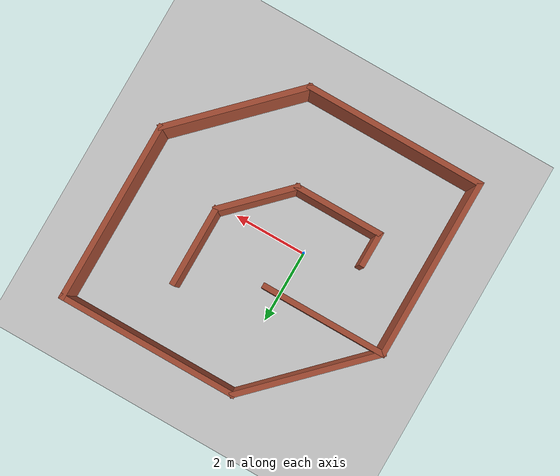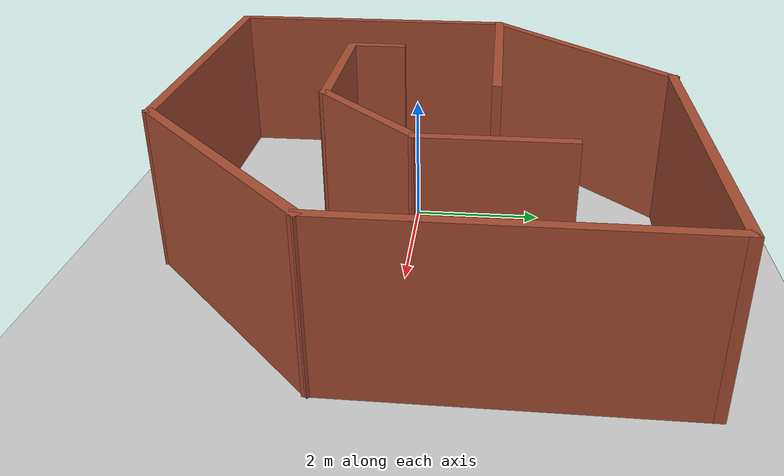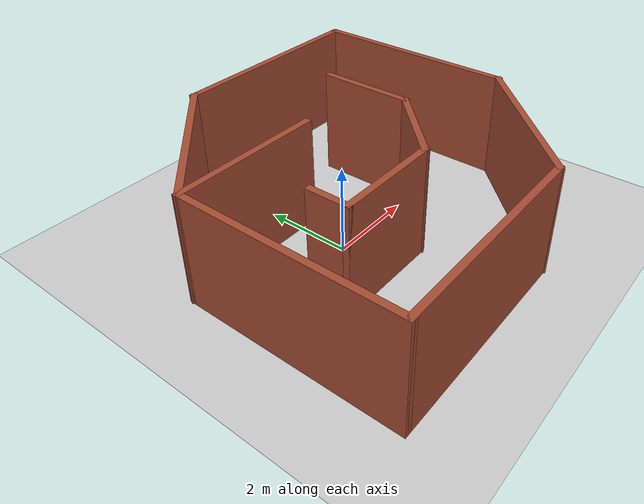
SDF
<sdf version="1.7">
 <world name="default">
  <light name="sun" type="directional">
   <pose>0 0 10 0 -0 0</pose>
   <diffuse>0.8 0.8 0.8 1</diffuse>
   <specular>0.2 0.2 0.2 1</specular>
   <attenuation>
    <range>1000</range>
    <constant>0.9</constant>
    <linear>0.01</linear>
    <quadratic>0.001</quadratic>
   </attenuation>
   <direction>-0.5 0.1 -0.9</direction>
   <spot><inner_angle>0</inner_angle><outer_angle>0</outer_angle><falloff>0</falloff></spot>
  </light>
  <model name="ground_plane">
   <static>1</static>
   <link name="link">
    <collision name="collision">
     <geometry><plane><normal>0 0 1</normal><size>100 100</size></plane></geometry>
     <surface><friction><ode><mu>100</mu><mu2>50</mu2></ode></friction></surface>
    </collision>
    <visual name="visual">
     <cast_shadows>0</cast_shadows>
     <geometry><plane><normal>0 0 1</normal><size>100 100</size></plane></geometry>
     <material>
      <script><uri>file://media/materials/scripts/gazebo.material</uri><name>Gazebo/Grey</name></script>
     </material>
    </visual>
   </link>
  </model>
  <gravity>0 0 -9.8</gravity>
  <magnetic_field>6e-06 2.3e-05 -4.2e-05</magnetic_field>
  <atmosphere type="adiabatic"/>
  <physics type="ode">
   <max_step_size>0.001</max_step_size>
   <real_time_factor>1</real_time_factor>
   <real_time_update_rate>1000</real_time_update_rate>
  </physics>
  <scene><ambient>0.4 0.4 0.4 1</ambient><background>0.7 0.7 0.7 1</background><shadows>1</shadows></scene>
  <audio><device>default</device></audio>
  <spherical_coordinates>
   <surface_model>EARTH_WGS84</surface_model>
   <latitude_deg>0</latitude_deg>
   <longitude_deg>0</longitude_deg>
   <elevation>0</elevation>
   <heading_deg>0</heading_deg>
  </spherical_coordinates>
  <model name="SMOLHOUSE">
   <pose>0.84641 0.185384 0 0 -0 0</pose>
   <link name="Wall_0">
    <collision name="Wall_0_Collision">
     <geometry><box><size>5 0.15 2.5</size></box></geometry>
     <pose>0 0 1.25 0 -0 0</pose>
    </collision>
    <visual name="Wall_0_Visual">
     <pose>0 0 1.25 0 -0 0</pose>
     <geometry><box><size>5 0.15 2.5</size></box></geometry>
     <material>
      <script><uri>file://media/materials/scripts/gazebo.material</uri><name>Gazebo/Bricks</name></script>
      <ambient>1 1 1 1</ambient>
     </material>
     <meta><layer>0</layer></meta>
    </visual>
    <pose>-1.36118 -3.78618 0 0 -0 0</pose>
   </link>
   <link name="Wall_1">
    <collision name="Wall_1_Collision">
     <geometry><box><size>4 0.15 2.5</size></box></geometry>
     <pose>0 0 1.25 0 -0 0</pose>
    </collision>
    <visual name="Wall_1_Visual">
     <pose>0 0 1.25 0 -0 0</pose>
     <geometry><box><size>4 0.15 2.5</size></box></geometry>
     <material>
      <script><uri>file://media/materials/scripts/gazebo.material</uri><name>Gazebo/Bricks</name></script>
      <ambient>1 1 1 1</ambient>
     </material>
     <meta><layer>0</layer></meta>
    </visual>
    <pose>2.425 -2.425 0 0 -0 0.785398</pose>
   </link>
   <link name="Wall_11">
    <collision name="Wall_11_Collision">
     <geometry><box><size>3.5 0.15 2.5</size></box></geometry>
     <pose>0 0 1.25 0 -0 0</pose>
    </collision>
    <visual name="Wall_11_Visual">
     <pose>0 0 1.25 0 -0 0</pose>
     <geometry><box><size>3.5 0.15 2.5</size></box></geometry>
     <material>
      <script><uri>file://media/materials/scripts/gazebo.material</uri><name>Gazebo/Bricks</name></script>
      <ambient>1 1 1 1</ambient>
     </material>
     <meta><layer>0</layer></meta>
    </visual>
    <pose>-2.11118 1.06382 0 0 -0 0</pose>
   </link>
   <link name="Wall_13">
    <collision name="Wall_13_Collision">
     <geometry><box><size>1 0.15 2.5</size></box></geometry>
     <pose>0 0 1.25 0 -0 0</pose>
    </collision>
    <visual name="Wall_13_Visual">
     <pose>0 0 1.25 0 -0 0</pose>
     <geometry><box><size>1 0.15 2.5</size></box></geometry>
     <material>
      <script><uri>file://media/materials/scripts/gazebo.material</uri><name>Gazebo/Bricks</name></script>
      <ambient>1 1 1 1</ambient>
     </material>
     <meta><layer>0</layer></meta>
    </visual>
    <pose>-2.25096 -1.04827 0 0 -0 1.5708</pose>
   </link>
   <link name="Wall_2">
    <collision name="Wall_2_Collision">
     <geometry><box><size>5 0.15 2.5</size></box></geometry>
     <pose>0 0 1.25 0 -0 0</pose>
    </collision>
    <visual name="Wall_2_Visual">
     <pose>0 0 1.25 0 -0 0</pose>
     <geometry><box><size>5 0.15 2.5</size></box></geometry>
     <material>
      <script><uri>file://media/materials/scripts/gazebo.material</uri><name>Gazebo/Bricks</name></script>
      <ambient>1 1 1 1</ambient>
     </material>
     <meta><layer>0</layer></meta>
    </visual>
    <pose>3.78618 1.36118 0 0 -0 1.5708</pose>
   </link>
   <link name="Wall_3">
    <collision name="Wall_3_Collision">
     <geometry><box><size>5 0.15 2.5</size></box></geometry>
     <pose>0 0 1.25 0 -0 0</pose>
    </collision>
    <visual name="Wall_3_Visual">
     <pose>0 0 1.25 0 -0 0</pose>
     <geometry><box><size>5 0.15 2.5</size></box></geometry>
     <material>
      <script><uri>file://media/materials/scripts/gazebo.material</uri><name>Gazebo/Bricks</name></script>
      <ambient>1 1 1 1</ambient>
     </material>
     <meta><layer>0</layer></meta>
    </visual>
    <pose>1.36118 3.78618 0 0 -0 3.14159</pose>
   </link>
   <link name="Wall_4">
    <collision name="Wall_4_Collision">
     <geometry><box><size>4 0.15 2.5</size></box></geometry>
     <pose>0 0 1.25 0 -0 0</pose>
    </collision>
    <visual name="Wall_4_Visual">
     <pose>0 0 1.25 0 -0 0</pose>
     <geometry><box><size>4 0.15 2.5</size></box></geometry>
     <material>
      <script><uri>file://media/materials/scripts/gazebo.material</uri><name>Gazebo/Bricks</name></script>
      <ambient>1 1 1 1</ambient>
     </material>
     <meta><layer>0</layer></meta>
    </visual>
    <pose>-2.425 2.425 0 0 -0 -2.35619</pose>
   </link>
   <link name="Wall_5">
    <collision name="Wall_5_Collision">
     <geometry><box><size>5 0.15 2.5</size></box></geometry>
     <pose>0 0 1.25 0 -0 0</pose>
    </collision>
    <visual name="Wall_5_Visual">
     <pose>0 0 1.25 0 -0 0</pose>
     <geometry><box><size>5 0.15 2.5</size></box></geometry>
     <material>
      <script><uri>file://media/materials/scripts/gazebo.material</uri><name>Gazebo/Bricks</name></script>
      <ambient>1 1 1 1</ambient>
     </material>
     <meta><layer>0</layer></meta>
    </visual>
    <pose>-3.78618 -1.36118 0 0 -0 -1.5708</pose>
   </link>
   <link name="Wall_7">
    <collision name="Wall_7_Collision">
     <geometry><box><size>2.5 0.15 2.5</size></box></geometry>
     <pose>0 0 1.25 0 -0 0</pose>
    </collision>
    <visual name="Wall_7_Visual">
     <pose>0 0 1.25 0 -0 0</pose>
     <geometry><box><size>2.5 0.15 2.5</size></box></geometry>
     <material>
      <script><uri>file://media/materials/scripts/gazebo.material</uri><name>Gazebo/Bricks</name></script>
      <ambient>1 1 1 1</ambient>
     </material>
     <meta><layer>0</layer></meta>
    </visual>
    <pose>-1.07596 -1.47327 0 0 -0 0</pose>
   </link>
   <link name="Wall_8">
    <collision name="Wall_8_Collision">
     <geometry><box><size>2.25 0.15 2.5</size></box></geometry>
     <pose>0 0 1.25 0 -0 0</pose>
    </collision>
    <visual name="Wall_8_Visual">
     <pose>0 0 1.25 0 -0 0</pose>
     <geometry><box><size>2.25 0.15 2.5</size></box></geometry>
     <material>
      <script><uri>file://media/materials/scripts/gazebo.material</uri><name>Gazebo/Bricks</name></script>
      <ambient>1 1 1 1</ambient>
     </material>
     <meta><layer>0</layer></meta>
    </visual>
    <pose>0.841499 -0.730803 0 0 -0 0.785398</pose>
   </link>
   <link name="Wall_9">
    <collision name="Wall_9_Collision">
     <geometry><box><size>2.25 0.15 2.5</size></box></geometry>
     <pose>0 0 1.25 0 -0 0</pose>
    </collision>
    <visual name="Wall_9_Visual">
     <pose>0 0 1.25 0 -0 0</pose>
     <geometry><box><size>2.25 0.15 2.5</size></box></geometry>
     <material>
      <script><uri>file://media/materials/scripts/gazebo.material</uri><name>Gazebo/Bricks</name></script>
      <ambient>1 1 1 1</ambient>
     </material>
     <meta><layer>0</layer></meta>
    </visual>
    <pose>1.58396 1.06166 0 0 -0 1.5708</pose>
   </link>
   <static>1</static>
  </model>
 </world>
</sdf>
